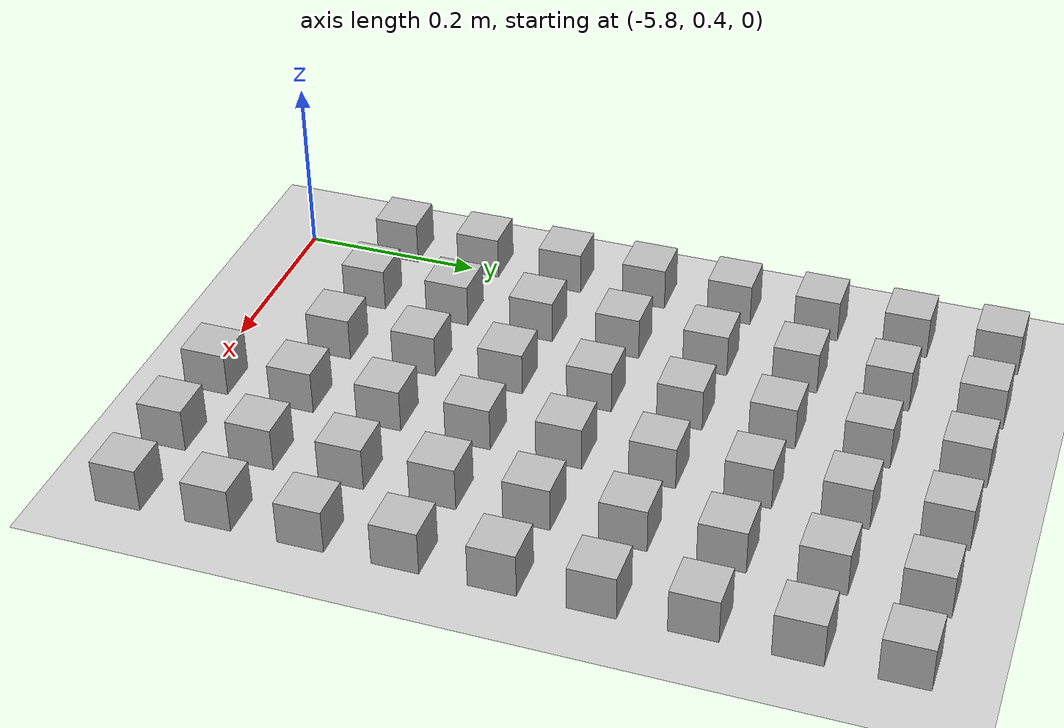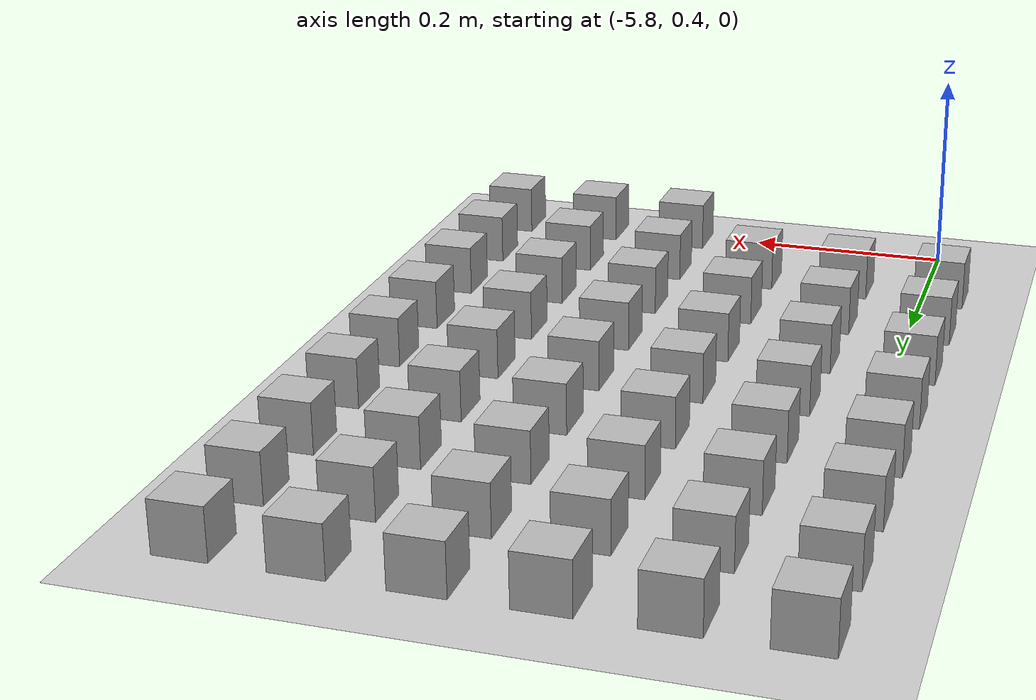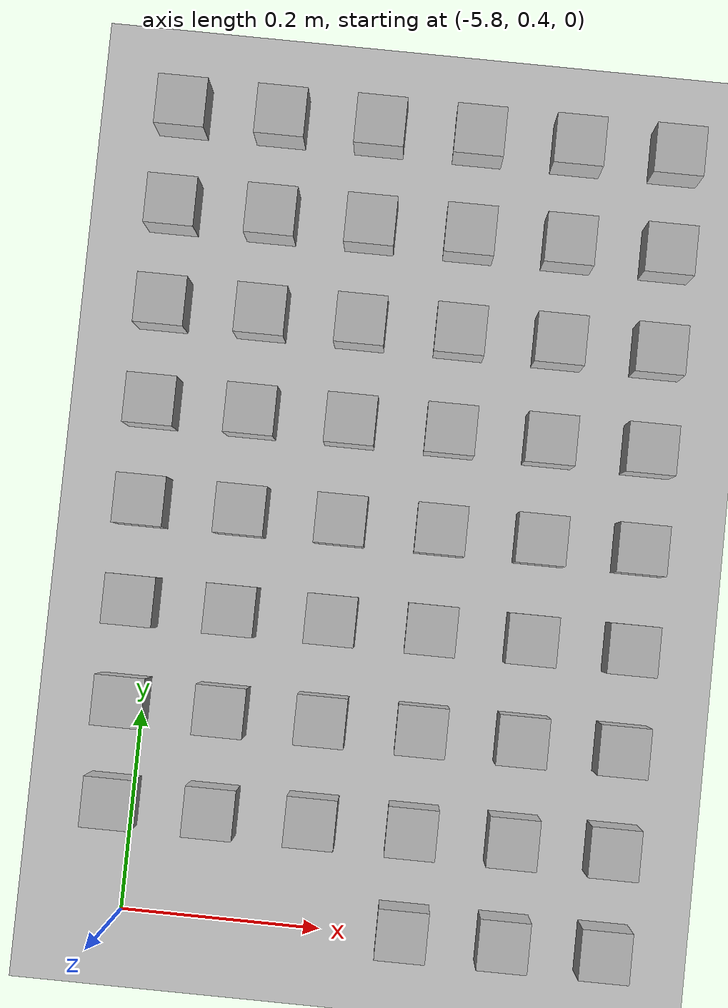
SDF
<sdf version="1.4">
 <world name="default">
  <model name="ground_plane">
   <static>1</static>
   <link name="link">
    <collision name="collision">
     <geometry><plane><normal>0 0 1</normal><size>100 100</size></plane></geometry>
     <surface><friction><ode><mu>100</mu><mu2>50</mu2></ode></friction></surface>
    </collision>
    <visual name="visual">
     <cast_shadows>0</cast_shadows>
     <geometry><plane><normal>0 0 1</normal><size>100 100</size></plane></geometry>
     <material>
      <script><uri>file://media/materials/scripts/gazebo.material</uri><name>Gazebo/Grey</name></script>
     </material>
    </visual>
    <velocity_decay><linear>0</linear><angular>0</angular></velocity_decay>
   </link>
  </model>
  <model name="at115">
   <static>0</static>
   <link name="link">
    <inertial>
     <mass>0.01</mass>
     <inertia><ixx>4e-05</ixx><ixy>0</ixy><ixz>0</ixz><iyy>4e-05</iyy><iyz>0</iyz><izz>4e-05</izz></inertia>
    </inertial>
    <visual name="visual">
     <geometry><box><size>0.05 0.05 0.05</size></box></geometry>
     <material>
      <script>
       <uri>model://at0/materials/scripts</uri>
       <uri>model://at0/materials/textures</uri>
       <name>at0/Diffuse</name>
      </script>
     </material>
    </visual>
    <collision name="collision">
     <geometry><box><size>0.05 0.05 0.05</size></box></geometry>
     <surface><friction><ode><mu>0.8</mu><mu2>0.7</mu2></ode></friction></surface>
    </collision>
    <velocity_decay><linear>0</linear><angular>0</angular></velocity_decay>
   </link>
   <pose>-5.51833 0.409652 0.025 0 -0 0</pose>
  </model>
  <model name="at116">
   <static>0</static>
   <link name="link">
    <inertial>
     <mass>0.01</mass>
     <inertia><ixx>4e-05</ixx><ixy>0</ixy><ixz>0</ixz><iyy>4e-05</iyy><iyz>0</iyz><izz>4e-05</izz></inertia>
    </inertial>
    <visual name="visual">
     <geometry><box><size>0.05 0.05 0.05</size></box></geometry>
     <material>
      <script>
       <uri>model://at0/materials/scripts</uri>
       <uri>model://at0/materials/textures</uri>
       <name>at0/Diffuse</name>
      </script>
     </material>
    </visual>
    <collision name="collision">
     <geometry><box><size>0.05 0.05 0.05</size></box></geometry>
     <surface><friction><ode><mu>0.8</mu><mu2>0.7</mu2></ode></friction></surface>
    </collision>
    <velocity_decay><linear>0</linear><angular>0</angular></velocity_decay>
   </link>
   <pose>-5.41833 0.409652 0.025 0 -0 0</pose>
  </model>
  <model name="at117">
   <static>0</static>
   <link name="link">
    <inertial>
     <mass>0.01</mass>
     <inertia><ixx>4e-05</ixx><ixy>0</ixy><ixz>0</ixz><iyy>4e-05</iyy><iyz>0</iyz><izz>4e-05</izz></inertia>
    </inertial>
    <visual name="visual">
     <geometry><box><size>0.05 0.05 0.05</size></box></geometry>
     <material>
      <script>
       <uri>model://at0/materials/scripts</uri>
       <uri>model://at0/materials/textures</uri>
       <name>at0/Diffuse</name>
      </script>
     </material>
    </visual>
    <collision name="collision">
     <geometry><box><size>0.05 0.05 0.05</size></box></geometry>
     <surface><friction><ode><mu>0.8</mu><mu2>0.7</mu2></ode></friction></surface>
    </collision>
    <velocity_decay><linear>0</linear><angular>0</angular></velocity_decay>
   </link>
   <pose>-5.31833 0.409652 0.025 0 -0 0</pose>
  </model>
  <model name="at128">
   <static>0</static>
   <link name="link">
    <inertial>
     <mass>0.01</mass>
     <inertia><ixx>4e-05</ixx><ixy>0</ixy><ixz>0</ixz><iyy>4e-05</iyy><iyz>0</iyz><izz>4e-05</izz></inertia>
    </inertial>
    <visual name="visual">
     <geometry><box><size>0.05 0.05 0.05</size></box></geometry>
     <material>
      <script>
       <uri>model://at0/materials/scripts</uri>
       <uri>model://at0/materials/textures</uri>
       <name>at0/Diffuse</name>
      </script>
     </material>
    </visual>
    <collision name="collision">
     <geometry><box><size>0.05 0.05 0.05</size></box></geometry>
     <surface><friction><ode><mu>0.8</mu><mu2>0.7</mu2></ode></friction></surface>
    </collision>
    <velocity_decay><linear>0</linear><angular>0</angular></velocity_decay>
   </link>
   <pose>-5.81833 0.509652 0.025 0 -0 0</pose>
  </model>
  <model name="at129">
   <static>0</static>
   <link name="link">
    <inertial>
     <mass>0.01</mass>
     <inertia><ixx>4e-05</ixx><ixy>0</ixy><ixz>0</ixz><iyy>4e-05</iyy><iyz>0</iyz><izz>4e-05</izz></inertia>
    </inertial>
    <visual name="visual">
     <geometry><box><size>0.05 0.05 0.05</size></box></geometry>
     <material>
      <script>
       <uri>model://at0/materials/scripts</uri>
       <uri>model://at0/materials/textures</uri>
       <name>at0/Diffuse</name>
      </script>
     </material>
    </visual>
    <collision name="collision">
     <geometry><box><size>0.05 0.05 0.05</size></box></geometry>
     <surface><friction><ode><mu>0.8</mu><mu2>0.7</mu2></ode></friction></surface>
    </collision>
    <velocity_decay><linear>0</linear><angular>0</angular></velocity_decay>
   </link>
   <pose>-5.71833 0.509652 0.025 0 -0 0</pose>
  </model>
  <model name="at130">
   <static>0</static>
   <link name="link">
    <inertial>
     <mass>0.01</mass>
     <inertia><ixx>4e-05</ixx><ixy>0</ixy><ixz>0</ixz><iyy>4e-05</iyy><iyz>0</iyz><izz>4e-05</izz></inertia>
    </inertial>
    <visual name="visual">
     <geometry><box><size>0.05 0.05 0.05</size></box></geometry>
     <material>
      <script>
       <uri>model://at0/materials/scripts</uri>
       <uri>model://at0/materials/textures</uri>
       <name>at0/Diffuse</name>
      </script>
     </material>
    </visual>
    <collision name="collision">
     <geometry><box><size>0.05 0.05 0.05</size></box></geometry>
     <surface><friction><ode><mu>0.8</mu><mu2>0.7</mu2></ode></friction></surface>
    </collision>
    <velocity_decay><linear>0</linear><angular>0</angular></velocity_decay>
   </link>
   <pose>-5.61833 0.509652 0.025 0 -0 0</pose>
  </model>
  <model name="at131">
   <static>0</static>
   <link name="link">
    <inertial>
     <mass>0.01</mass>
     <inertia><ixx>4e-05</ixx><ixy>0</ixy><ixz>0</ixz><iyy>4e-05</iyy><iyz>0</iyz><izz>4e-05</izz></inertia>
    </inertial>
    <visual name="visual">
     <geometry><box><size>0.05 0.05 0.05</size></box></geometry>
     <material>
      <script>
       <uri>model://at0/materials/scripts</uri>
       <uri>model://at0/materials/textures</uri>
       <name>at0/Diffuse</name>
      </script>
     </material>
    </visual>
    <collision name="collision">
     <geometry><box><size>0.05 0.05 0.05</size></box></geometry>
     <surface><friction><ode><mu>0.8</mu><mu2>0.7</mu2></ode></friction></surface>
    </collision>
    <velocity_decay><linear>0</linear><angular>0</angular></velocity_decay>
   </link>
   <pose>-5.51833 0.509652 0.025 0 -0 0</pose>
  </model>
  <model name="at132">
   <static>0</static>
   <link name="link">
    <inertial>
     <mass>0.01</mass>
     <inertia><ixx>4e-05</ixx><ixy>0</ixy><ixz>0</ixz><iyy>4e-05</iyy><iyz>0</iyz><izz>4e-05</izz></inertia>
    </inertial>
    <visual name="visual">
     <geometry><box><size>0.05 0.05 0.05</size></box></geometry>
     <material>
      <script>
       <uri>model://at0/materials/scripts</uri>
       <uri>model://at0/materials/textures</uri>
       <name>at0/Diffuse</name>
      </script>
     </material>
    </visual>
    <collision name="collision">
     <geometry><box><size>0.05 0.05 0.05</size></box></geometry>
     <surface><friction><ode><mu>0.8</mu><mu2>0.7</mu2></ode></friction></surface>
    </collision>
    <velocity_decay><linear>0</linear><angular>0</angular></velocity_decay>
   </link>
   <pose>-5.41833 0.509652 0.025 0 -0 0</pose>
  </model>
  <model name="at133">
   <static>0</static>
   <link name="link">
    <inertial>
     <mass>0.01</mass>
     <inertia><ixx>4e-05</ixx><ixy>0</ixy><ixz>0</ixz><iyy>4e-05</iyy><iyz>0</iyz><izz>4e-05</izz></inertia>
    </inertial>
    <visual name="visual">
     <geometry><box><size>0.05 0.05 0.05</size></box></geometry>
     <material>
      <script>
       <uri>model://at0/materials/scripts</uri>
       <uri>model://at0/materials/textures</uri>
       <name>at0/Diffuse</name>
      </script>
     </material>
    </visual>
    <collision name="collision">
     <geometry><box><size>0.05 0.05 0.05</size></box></geometry>
     <surface><friction><ode><mu>0.8</mu><mu2>0.7</mu2></ode></friction></surface>
    </collision>
    <velocity_decay><linear>0</linear><angular>0</angular></velocity_decay>
   </link>
   <pose>-5.31833 0.509652 0.025 0 -0 0</pose>
  </model>
  <model name="at144">
   <static>0</static>
   <link name="link">
    <inertial>
     <mass>0.01</mass>
     <inertia><ixx>4e-05</ixx><ixy>0</ixy><ixz>0</ixz><iyy>4e-05</iyy><iyz>0</iyz><izz>4e-05</izz></inertia>
    </inertial>
    <visual name="visual">
     <geometry><box><size>0.05 0.05 0.05</size></box></geometry>
     <material>
      <script>
       <uri>model://at0/materials/scripts</uri>
       <uri>model://at0/materials/textures</uri>
       <name>at0/Diffuse</name>
      </script>
     </material>
    </visual>
    <collision name="collision">
     <geometry><box><size>0.05 0.05 0.05</size></box></geometry>
     <surface><friction><ode><mu>0.8</mu><mu2>0.7</mu2></ode></friction></surface>
    </collision>
    <velocity_decay><linear>0</linear><angular>0</angular></velocity_decay>
   </link>
   <pose>-5.81833 0.609652 0.025 0 -0 0</pose>
  </model>
  <model name="at145">
   <static>0</static>
   <link name="link">
    <inertial>
     <mass>0.01</mass>
     <inertia><ixx>4e-05</ixx><ixy>0</ixy><ixz>0</ixz><iyy>4e-05</iyy><iyz>0</iyz><izz>4e-05</izz></inertia>
    </inertial>
    <visual name="visual">
     <geometry><box><size>0.05 0.05 0.05</size></box></geometry>
     <material>
      <script>
       <uri>model://at0/materials/scripts</uri>
       <uri>model://at0/materials/textures</uri>
       <name>at0/Diffuse</name>
      </script>
     </material>
    </visual>
    <collision name="collision">
     <geometry><box><size>0.05 0.05 0.05</size></box></geometry>
     <surface><friction><ode><mu>0.8</mu><mu2>0.7</mu2></ode></friction></surface>
    </collision>
    <velocity_decay><linear>0</linear><angular>0</angular></velocity_decay>
   </link>
   <pose>-5.71833 0.609652 0.025 0 -0 0</pose>
  </model>
  <model name="at146">
   <static>0</static>
   <link name="link">
    <inertial>
     <mass>0.01</mass>
     <inertia><ixx>4e-05</ixx><ixy>0</ixy><ixz>0</ixz><iyy>4e-05</iyy><iyz>0</iyz><izz>4e-05</izz></inertia>
    </inertial>
    <visual name="visual">
     <geometry><box><size>0.05 0.05 0.05</size></box></geometry>
     <material>
      <script>
       <uri>model://at0/materials/scripts</uri>
       <uri>model://at0/materials/textures</uri>
       <name>at0/Diffuse</name>
      </script>
     </material>
    </visual>
    <collision name="collision">
     <geometry><box><size>0.05 0.05 0.05</size></box></geometry>
     <surface><friction><ode><mu>0.8</mu><mu2>0.7</mu2></ode></friction></surface>
    </collision>
    <velocity_decay><linear>0</linear><angular>0</angular></velocity_decay>
   </link>
   <pose>-5.61833 0.609652 0.025 0 -0 0</pose>
  </model>
  <model name="at147">
   <static>0</static>
   <link name="link">
    <inertial>
     <mass>0.01</mass>
     <inertia><ixx>4e-05</ixx><ixy>0</ixy><ixz>0</ixz><iyy>4e-05</iyy><iyz>0</iyz><izz>4e-05</izz></inertia>
    </inertial>
    <visual name="visual">
     <geometry><box><size>0.05 0.05 0.05</size></box></geometry>
     <material>
      <script>
       <uri>model://at0/materials/scripts</uri>
       <uri>model://at0/materials/textures</uri>
       <name>at0/Diffuse</name>
      </script>
     </material>
    </visual>
    <collision name="collision">
     <geometry><box><size>0.05 0.05 0.05</size></box></geometry>
     <surface><friction><ode><mu>0.8</mu><mu2>0.7</mu2></ode></friction></surface>
    </collision>
    <velocity_decay><linear>0</linear><angular>0</angular></velocity_decay>
   </link>
   <pose>-5.51833 0.609652 0.025 0 -0 0</pose>
  </model>
  <model name="at148">
   <static>0</static>
   <link name="link">
    <inertial>
     <mass>0.01</mass>
     <inertia><ixx>4e-05</ixx><ixy>0</ixy><ixz>0</ixz><iyy>4e-05</iyy><iyz>0</iyz><izz>4e-05</izz></inertia>
    </inertial>
    <visual name="visual">
     <geometry><box><size>0.05 0.05 0.05</size></box></geometry>
     <material>
      <script>
       <uri>model://at0/materials/scripts</uri>
       <uri>model://at0/materials/textures</uri>
       <name>at0/Diffuse</name>
      </script>
     </material>
    </visual>
    <collision name="collision">
     <geometry><box><size>0.05 0.05 0.05</size></box></geometry>
     <surface><friction><ode><mu>0.8</mu><mu2>0.7</mu2></ode></friction></surface>
    </collision>
    <velocity_decay><linear>0</linear><angular>0</angular></velocity_decay>
   </link>
   <pose>-5.41833 0.609652 0.025 0 -0 0</pose>
  </model>
  <model name="at149">
   <static>0</static>
   <link name="link">
    <inertial>
     <mass>0.01</mass>
     <inertia><ixx>4e-05</ixx><ixy>0</ixy><ixz>0</ixz><iyy>4e-05</iyy><iyz>0</iyz><izz>4e-05</izz></inertia>
    </inertial>
    <visual name="visual">
     <geometry><box><size>0.05 0.05 0.05</size></box></geometry>
     <material>
      <script>
       <uri>model://at0/materials/scripts</uri>
       <uri>model://at0/materials/textures</uri>
       <name>at0/Diffuse</name>
      </script>
     </material>
    </visual>
    <collision name="collision">
     <geometry><box><size>0.05 0.05 0.05</size></box></geometry>
     <surface><friction><ode><mu>0.8</mu><mu2>0.7</mu2></ode></friction></surface>
    </collision>
    <velocity_decay><linear>0</linear><angular>0</angular></velocity_decay>
   </link>
   <pose>-5.31833 0.609652 0.025 0 -0 0</pose>
  </model>
  <model name="at160">
   <static>0</static>
   <link name="link">
    <inertial>
     <mass>0.01</mass>
     <inertia><ixx>4e-05</ixx><ixy>0</ixy><ixz>0</ixz><iyy>4e-05</iyy><iyz>0</iyz><izz>4e-05</izz></inertia>
    </inertial>
    <visual name="visual">
     <geometry><box><size>0.05 0.05 0.05</size></box></geometry>
     <material>
      <script>
       <uri>model://at0/materials/scripts</uri>
       <uri>model://at0/materials/textures</uri>
       <name>at0/Diffuse</name>
      </script>
     </material>
    </visual>
    <collision name="collision">
     <geometry><box><size>0.05 0.05 0.05</size></box></geometry>
     <surface><friction><ode><mu>0.8</mu><mu2>0.7</mu2></ode></friction></surface>
    </collision>
    <velocity_decay><linear>0</linear><angular>0</angular></velocity_decay>
   </link>
   <pose>-5.81833 0.709652 0.025 0 -0 0</pose>
  </model>
  <model name="at161">
   <static>0</static>
   <link name="link">
    <inertial>
     <mass>0.01</mass>
     <inertia><ixx>4e-05</ixx><ixy>0</ixy><ixz>0</ixz><iyy>4e-05</iyy><iyz>0</iyz><izz>4e-05</izz></inertia>
    </inertial>
    <visual name="visual">
     <geometry><box><size>0.05 0.05 0.05</size></box></geometry>
     <material>
      <script>
       <uri>model://at0/materials/scripts</uri>
       <uri>model://at0/materials/textures</uri>
       <name>at0/Diffuse</name>
      </script>
     </material>
    </visual>
    <collision name="collision">
     <geometry><box><size>0.05 0.05 0.05</size></box></geometry>
     <surface><friction><ode><mu>0.8</mu><mu2>0.7</mu2></ode></friction></surface>
    </collision>
    <velocity_decay><linear>0</linear><angular>0</angular></velocity_decay>
   </link>
   <pose>-5.71833 0.709652 0.025 0 -0 0</pose>
  </model>
  <model name="at162">
   <static>0</static>
   <link name="link">
    <inertial>
     <mass>0.01</mass>
     <inertia><ixx>4e-05</ixx><ixy>0</ixy><ixz>0</ixz><iyy>4e-05</iyy><iyz>0</iyz><izz>4e-05</izz></inertia>
    </inertial>
    <visual name="visual">
     <geometry><box><size>0.05 0.05 0.05</size></box></geometry>
     <material>
      <script>
       <uri>model://at0/materials/scripts</uri>
       <uri>model://at0/materials/textures</uri>
       <name>at0/Diffuse</name>
      </script>
     </material>
    </visual>
    <collision name="collision">
     <geometry><box><size>0.05 0.05 0.05</size></box></geometry>
     <surface><friction><ode><mu>0.8</mu><mu2>0.7</mu2></ode></friction></surface>
    </collision>
    <velocity_decay><linear>0</linear><angular>0</angular></velocity_decay>
   </link>
   <pose>-5.61833 0.709652 0.025 0 -0 0</pose>
  </model>
  <model name="at163">
   <static>0</static>
   <link name="link">
    <inertial>
     <mass>0.01</mass>
     <inertia><ixx>4e-05</ixx><ixy>0</ixy><ixz>0</ixz><iyy>4e-05</iyy><iyz>0</iyz><izz>4e-05</izz></inertia>
    </inertial>
    <visual name="visual">
     <geometry><box><size>0.05 0.05 0.05</size></box></geometry>
     <material>
      <script>
       <uri>model://at0/materials/scripts</uri>
       <uri>model://at0/materials/textures</uri>
       <name>at0/Diffuse</name>
      </script>
     </material>
    </visual>
    <collision name="collision">
     <geometry><box><size>0.05 0.05 0.05</size></box></geometry>
     <surface><friction><ode><mu>0.8</mu><mu2>0.7</mu2></ode></friction></surface>
    </collision>
    <velocity_decay><linear>0</linear><angular>0</angular></velocity_decay>
   </link>
   <pose>-5.51833 0.709652 0.025 0 -0 0</pose>
  </model>
  <model name="at164">
   <static>0</static>
   <link name="link">
    <inertial>
     <mass>0.01</mass>
     <inertia><ixx>4e-05</ixx><ixy>0</ixy><ixz>0</ixz><iyy>4e-05</iyy><iyz>0</iyz><izz>4e-05</izz></inertia>
    </inertial>
    <visual name="visual">
     <geometry><box><size>0.05 0.05 0.05</size></box></geometry>
     <material>
      <script>
       <uri>model://at0/materials/scripts</uri>
       <uri>model://at0/materials/textures</uri>
       <name>at0/Diffuse</name>
      </script>
     </material>
    </visual>
    <collision name="collision">
     <geometry><box><size>0.05 0.05 0.05</size></box></geometry>
     <surface><friction><ode><mu>0.8</mu><mu2>0.7</mu2></ode></friction></surface>
    </collision>
    <velocity_decay><linear>0</linear><angular>0</angular></velocity_decay>
   </link>
   <pose>-5.41833 0.709652 0.025 0 -0 0</pose>
  </model>
  <model name="at165">
   <static>0</static>
   <link name="link">
    <inertial>
     <mass>0.01</mass>
     <inertia><ixx>4e-05</ixx><ixy>0</ixy><ixz>0</ixz><iyy>4e-05</iyy><iyz>0</iyz><izz>4e-05</izz></inertia>
    </inertial>
    <visual name="visual">
     <geometry><box><size>0.05 0.05 0.05</size></box></geometry>
     <material>
      <script>
       <uri>model://at0/materials/scripts</uri>
       <uri>model://at0/materials/textures</uri>
       <name>at0/Diffuse</name>
      </script>
     </material>
    </visual>
    <collision name="collision">
     <geometry><box><size>0.05 0.05 0.05</size></box></geometry>
     <surface><friction><ode><mu>0.8</mu><mu2>0.7</mu2></ode></friction></surface>
    </collision>
    <velocity_decay><linear>0</linear><angular>0</angular></velocity_decay>
   </link>
   <pose>-5.31833 0.709652 0.025 0 -0 0</pose>
  </model>
  <model name="at176">
   <static>0</static>
   <link name="link">
    <inertial>
     <mass>0.01</mass>
     <inertia><ixx>4e-05</ixx><ixy>0</ixy><ixz>0</ixz><iyy>4e-05</iyy><iyz>0</iyz><izz>4e-05</izz></inertia>
    </inertial>
    <visual name="visual">
     <geometry><box><size>0.05 0.05 0.05</size></box></geometry>
     <material>
      <script>
       <uri>model://at0/materials/scripts</uri>
       <uri>model://at0/materials/textures</uri>
       <name>at0/Diffuse</name>
      </script>
     </material>
    </visual>
    <collision name="collision">
     <geometry><box><size>0.05 0.05 0.05</size></box></geometry>
     <surface><friction><ode><mu>0.8</mu><mu2>0.7</mu2></ode></friction></surface>
    </collision>
    <velocity_decay><linear>0</linear><angular>0</angular></velocity_decay>
   </link>
   <pose>-5.81833 0.809652 0.025 0 -0 0</pose>
  </model>
  <model name="at177">
   <static>0</static>
   <link name="link">
    <inertial>
     <mass>0.01</mass>
     <inertia><ixx>4e-05</ixx><ixy>0</ixy><ixz>0</ixz><iyy>4e-05</iyy><iyz>0</iyz><izz>4e-05</izz></inertia>
    </inertial>
    <visual name="visual">
     <geometry><box><size>0.05 0.05 0.05</size></box></geometry>
     <material>
      <script>
       <uri>model://at0/materials/scripts</uri>
       <uri>model://at0/materials/textures</uri>
       <name>at0/Diffuse</name>
      </script>
     </material>
    </visual>
    <collision name="collision">
     <geometry><box><size>0.05 0.05 0.05</size></box></geometry>
     <surface><friction><ode><mu>0.8</mu><mu2>0.7</mu2></ode></friction></surface>
    </collision>
    <velocity_decay><linear>0</linear><angular>0</angular></velocity_decay>
   </link>
   <pose>-5.71833 0.809652 0.025 0 -0 0</pose>
  </model>
  <model name="at178">
   <static>0</static>
   <link name="link">
    <inertial>
     <mass>0.01</mass>
     <inertia><ixx>4e-05</ixx><ixy>0</ixy><ixz>0</ixz><iyy>4e-05</iyy><iyz>0</iyz><izz>4e-05</izz></inertia>
    </inertial>
    <visual name="visual">
     <geometry><box><size>0.05 0.05 0.05</size></box></geometry>
     <material>
      <script>
       <uri>model://at0/materials/scripts</uri>
       <uri>model://at0/materials/textures</uri>
       <name>at0/Diffuse</name>
      </script>
     </material>
    </visual>
    <collision name="collision">
     <geometry><box><size>0.05 0.05 0.05</size></box></geometry>
     <surface><friction><ode><mu>0.8</mu><mu2>0.7</mu2></ode></friction></surface>
    </collision>
    <velocity_decay><linear>0</linear><angular>0</angular></velocity_decay>
   </link>
   <pose>-5.61833 0.809652 0.025 0 -0 0</pose>
  </model>
  <model name="at179">
   <static>0</static>
   <link name="link">
    <inertial>
     <mass>0.01</mass>
     <inertia><ixx>4e-05</ixx><ixy>0</ixy><ixz>0</ixz><iyy>4e-05</iyy><iyz>0</iyz><izz>4e-05</izz></inertia>
    </inertial>
    <visual name="visual">
     <geometry><box><size>0.05 0.05 0.05</size></box></geometry>
     <material>
      <script>
       <uri>model://at0/materials/scripts</uri>
       <uri>model://at0/materials/textures</uri>
       <name>at0/Diffuse</name>
      </script>
     </material>
    </visual>
    <collision name="collision">
     <geometry><box><size>0.05 0.05 0.05</size></box></geometry>
     <surface><friction><ode><mu>0.8</mu><mu2>0.7</mu2></ode></friction></surface>
    </collision>
    <velocity_decay><linear>0</linear><angular>0</angular></velocity_decay>
   </link>
   <pose>-5.51833 0.809652 0.025 0 -0 0</pose>
  </model>
  <model name="at180">
   <static>0</static>
   <link name="link">
    <inertial>
     <mass>0.01</mass>
     <inertia><ixx>4e-05</ixx><ixy>0</ixy><ixz>0</ixz><iyy>4e-05</iyy><iyz>0</iyz><izz>4e-05</izz></inertia>
    </inertial>
    <visual name="visual">
     <geometry><box><size>0.05 0.05 0.05</size></box></geometry>
     <material>
      <script>
       <uri>model://at0/materials/scripts</uri>
       <uri>model://at0/materials/textures</uri>
       <name>at0/Diffuse</name>
      </script>
     </material>
    </visual>
    <collision name="collision">
     <geometry><box><size>0.05 0.05 0.05</size></box></geometry>
     <surface><friction><ode><mu>0.8</mu><mu2>0.7</mu2></ode></friction></surface>
    </collision>
    <velocity_decay><linear>0</linear><angular>0</angular></velocity_decay>
   </link>
   <pose>-5.41833 0.809652 0.025 0 -0 0</pose>
  </model>
  <model name="at181">
   <static>0</static>
   <link name="link">
    <inertial>
     <mass>0.01</mass>
     <inertia><ixx>4e-05</ixx><ixy>0</ixy><ixz>0</ixz><iyy>4e-05</iyy><iyz>0</iyz><izz>4e-05</izz></inertia>
    </inertial>
    <visual name="visual">
     <geometry><box><size>0.05 0.05 0.05</size></box></geometry>
     <material>
      <script>
       <uri>model://at0/materials/scripts</uri>
       <uri>model://at0/materials/textures</uri>
       <name>at0/Diffuse</name>
      </script>
     </material>
    </visual>
    <collision name="collision">
     <geometry><box><size>0.05 0.05 0.05</size></box></geometry>
     <surface><friction><ode><mu>0.8</mu><mu2>0.7</mu2></ode></friction></surface>
    </collision>
    <velocity_decay><linear>0</linear><angular>0</angular></velocity_decay>
   </link>
   <pose>-5.31833 0.809652 0.025 0 -0 0</pose>
  </model>
  <model name="at192">
   <static>0</static>
   <link name="link">
    <inertial>
     <mass>0.01</mass>
     <inertia><ixx>4e-05</ixx><ixy>0</ixy><ixz>0</ixz><iyy>4e-05</iyy><iyz>0</iyz><izz>4e-05</izz></inertia>
    </inertial>
    <visual name="visual">
     <geometry><box><size>0.05 0.05 0.05</size></box></geometry>
     <material>
      <script>
       <uri>model://at0/materials/scripts</uri>
       <uri>model://at0/materials/textures</uri>
       <name>at0/Diffuse</name>
      </script>
     </material>
    </visual>
    <collision name="collision">
     <geometry><box><size>0.05 0.05 0.05</size></box></geometry>
     <surface><friction><ode><mu>0.8</mu><mu2>0.7</mu2></ode></friction></surface>
    </collision>
    <velocity_decay><linear>0</linear><angular>0</angular></velocity_decay>
   </link>
   <pose>-5.81833 0.909652 0.025 0 -0 0</pose>
  </model>
  <model name="at193">
   <static>0</static>
   <link name="link">
    <inertial>
     <mass>0.01</mass>
     <inertia><ixx>4e-05</ixx><ixy>0</ixy><ixz>0</ixz><iyy>4e-05</iyy><iyz>0</iyz><izz>4e-05</izz></inertia>
    </inertial>
    <visual name="visual">
     <geometry><box><size>0.05 0.05 0.05</size></box></geometry>
     <material>
      <script>
       <uri>model://at0/materials/scripts</uri>
       <uri>model://at0/materials/textures</uri>
       <name>at0/Diffuse</name>
      </script>
     </material>
    </visual>
    <collision name="collision">
     <geometry><box><size>0.05 0.05 0.05</size></box></geometry>
     <surface><friction><ode><mu>0.8</mu><mu2>0.7</mu2></ode></friction></surface>
    </collision>
    <velocity_decay><linear>0</linear><angular>0</angular></velocity_decay>
   </link>
   <pose>-5.71833 0.909652 0.025 0 -0 0</pose>
  </model>
  <model name="at194">
   <static>0</static>
   <link name="link">
    <inertial>
     <mass>0.01</mass>
     <inertia><ixx>4e-05</ixx><ixy>0</ixy><ixz>0</ixz><iyy>4e-05</iyy><iyz>0</iyz><izz>4e-05</izz></inertia>
    </inertial>
    <visual name="visual">
     <geometry><box><size>0.05 0.05 0.05</size></box></geometry>
     <material>
      <script>
       <uri>model://at0/materials/scripts</uri>
       <uri>model://at0/materials/textures</uri>
       <name>at0/Diffuse</name>
      </script>
     </material>
    </visual>
    <collision name="collision">
     <geometry><box><size>0.05 0.05 0.05</size></box></geometry>
     <surface><friction><ode><mu>0.8</mu><mu2>0.7</mu2></ode></friction></surface>
    </collision>
    <velocity_decay><linear>0</linear><angular>0</angular></velocity_decay>
   </link>
   <pose>-5.61833 0.909652 0.025 0 -0 0</pose>
  </model>
  <model name="at195">
   <static>0</static>
   <link name="link">
    <inertial>
     <mass>0.01</mass>
     <inertia><ixx>4e-05</ixx><ixy>0</ixy><ixz>0</ixz><iyy>4e-05</iyy><iyz>0</iyz><izz>4e-05</izz></inertia>
    </inertial>
    <visual name="visual">
     <geometry><box><size>0.05 0.05 0.05</size></box></geometry>
     <material>
      <script>
       <uri>model://at0/materials/scripts</uri>
       <uri>model://at0/materials/textures</uri>
       <name>at0/Diffuse</name>
      </script>
     </material>
    </visual>
    <collision name="collision">
     <geometry><box><size>0.05 0.05 0.05</size></box></geometry>
     <surface><friction><ode><mu>0.8</mu><mu2>0.7</mu2></ode></friction></surface>
    </collision>
    <velocity_decay><linear>0</linear><angular>0</angular></velocity_decay>
   </link>
   <pose>-5.51833 0.909652 0.025 0 -0 0</pose>
  </model>
  <model name="at196">
   <static>0</static>
   <link name="link">
    <inertial>
     <mass>0.01</mass>
     <inertia><ixx>4e-05</ixx><ixy>0</ixy><ixz>0</ixz><iyy>4e-05</iyy><iyz>0</iyz><izz>4e-05</izz></inertia>
    </inertial>
    <visual name="visual">
     <geometry><box><size>0.05 0.05 0.05</size></box></geometry>
     <material>
      <script>
       <uri>model://at0/materials/scripts</uri>
       <uri>model://at0/materials/textures</uri>
       <name>at0/Diffuse</name>
      </script>
     </material>
    </visual>
    <collision name="collision">
     <geometry><box><size>0.05 0.05 0.05</size></box></geometry>
     <surface><friction><ode><mu>0.8</mu><mu2>0.7</mu2></ode></friction></surface>
    </collision>
    <velocity_decay><linear>0</linear><angular>0</angular></velocity_decay>
   </link>
   <pose>-5.41833 0.909652 0.025 0 -0 0</pose>
  </model>
  <model name="at197">
   <static>0</static>
   <link name="link">
    <inertial>
     <mass>0.01</mass>
     <inertia><ixx>4e-05</ixx><ixy>0</ixy><ixz>0</ixz><iyy>4e-05</iyy><iyz>0</iyz><izz>4e-05</izz></inertia>
    </inertial>
    <visual name="visual">
     <geometry><box><size>0.05 0.05 0.05</size></box></geometry>
     <material>
      <script>
       <uri>model://at0/materials/scripts</uri>
       <uri>model://at0/materials/textures</uri>
       <name>at0/Diffuse</name>
      </script>
     </material>
    </visual>
    <collision name="collision">
     <geometry><box><size>0.05 0.05 0.05</size></box></geometry>
     <surface><friction><ode><mu>0.8</mu><mu2>0.7</mu2></ode></friction></surface>
    </collision>
    <velocity_decay><linear>0</linear><angular>0</angular></velocity_decay>
   </link>
   <pose>-5.31833 0.909652 0.025 0 -0 0</pose>
  </model>
  <model name="at208">
   <static>0</static>
   <link name="link">
    <inertial>
     <mass>0.01</mass>
     <inertia><ixx>4e-05</ixx><ixy>0</ixy><ixz>0</ixz><iyy>4e-05</iyy><iyz>0</iyz><izz>4e-05</izz></inertia>
    </inertial>
    <visual name="visual">
     <geometry><box><size>0.05 0.05 0.05</size></box></geometry>
     <material>
      <script>
       <uri>model://at0/materials/scripts</uri>
       <uri>model://at0/materials/textures</uri>
       <name>at0/Diffuse</name>
      </script>
     </material>
    </visual>
    <collision name="collision">
     <geometry><box><size>0.05 0.05 0.05</size></box></geometry>
     <surface><friction><ode><mu>0.8</mu><mu2>0.7</mu2></ode></friction></surface>
    </collision>
    <velocity_decay><linear>0</linear><angular>0</angular></velocity_decay>
   </link>
   <pose>-5.81833 1.00965 0.025 0 -0 0</pose>
  </model>
  <model name="at209">
   <static>0</static>
   <link name="link">
    <inertial>
     <mass>0.01</mass>
     <inertia><ixx>4e-05</ixx><ixy>0</ixy><ixz>0</ixz><iyy>4e-05</iyy><iyz>0</iyz><izz>4e-05</izz></inertia>
    </inertial>
    <visual name="visual">
     <geometry><box><size>0.05 0.05 0.05</size></box></geometry>
     <material>
      <script>
       <uri>model://at0/materials/scripts</uri>
       <uri>model://at0/materials/textures</uri>
       <name>at0/Diffuse</name>
      </script>
     </material>
    </visual>
    <collision name="collision">
     <geometry><box><size>0.05 0.05 0.05</size></box></geometry>
     <surface><friction><ode><mu>0.8</mu><mu2>0.7</mu2></ode></friction></surface>
    </collision>
    <velocity_decay><linear>0</linear><angular>0</angular></velocity_decay>
   </link>
   <pose>-5.71833 1.00965 0.025 0 -0 0</pose>
  </model>
  <model name="at210">
   <static>0</static>
   <link name="link">
    <inertial>
     <mass>0.01</mass>
     <inertia><ixx>4e-05</ixx><ixy>0</ixy><ixz>0</ixz><iyy>4e-05</iyy><iyz>0</iyz><izz>4e-05</izz></inertia>
    </inertial>
    <visual name="visual">
     <geometry><box><size>0.05 0.05 0.05</size></box></geometry>
     <material>
      <script>
       <uri>model://at0/materials/scripts</uri>
       <uri>model://at0/materials/textures</uri>
       <name>at0/Diffuse</name>
      </script>
     </material>
    </visual>
    <collision name="collision">
     <geometry><box><size>0.05 0.05 0.05</size></box></geometry>
     <surface><friction><ode><mu>0.8</mu><mu2>0.7</mu2></ode></friction></surface>
    </collision>
    <velocity_decay><linear>0</linear><angular>0</angular></velocity_decay>
   </link>
   <pose>-5.61833 1.00965 0.025 0 -0 0</pose>
  </model>
  <model name="at211">
   <static>0</static>
   <link name="link">
    <inertial>
     <mass>0.01</mass>
     <inertia><ixx>4e-05</ixx><ixy>0</ixy><ixz>0</ixz><iyy>4e-05</iyy><iyz>0</iyz><izz>4e-05</izz></inertia>
    </inertial>
    <visual name="visual">
     <geometry><box><size>0.05 0.05 0.05</size></box></geometry>
     <material>
      <script>
       <uri>model://at0/materials/scripts</uri>
       <uri>model://at0/materials/textures</uri>
       <name>at0/Diffuse</name>
      </script>
     </material>
    </visual>
    <collision name="collision">
     <geometry><box><size>0.05 0.05 0.05</size></box></geometry>
     <surface><friction><ode><mu>0.8</mu><mu2>0.7</mu2></ode></friction></surface>
    </collision>
    <velocity_decay><linear>0</linear><angular>0</angular></velocity_decay>
   </link>
   <pose>-5.51833 1.00965 0.025 0 -0 0</pose>
  </model>
  <model name="at212">
   <static>0</static>
   <link name="link">
    <inertial>
     <mass>0.01</mass>
     <inertia><ixx>4e-05</ixx><ixy>0</ixy><ixz>0</ixz><iyy>4e-05</iyy><iyz>0</iyz><izz>4e-05</izz></inertia>
    </inertial>
    <visual name="visual">
     <geometry><box><size>0.05 0.05 0.05</size></box></geometry>
     <material>
      <script>
       <uri>model://at0/materials/scripts</uri>
       <uri>model://at0/materials/textures</uri>
       <name>at0/Diffuse</name>
      </script>
     </material>
    </visual>
    <collision name="collision">
     <geometry><box><size>0.05 0.05 0.05</size></box></geometry>
     <surface><friction><ode><mu>0.8</mu><mu2>0.7</mu2></ode></friction></surface>
    </collision>
    <velocity_decay><linear>0</linear><angular>0</angular></velocity_decay>
   </link>
   <pose>-5.41833 1.00965 0.025 0 -0 0</pose>
  </model>
  <model name="at213">
   <static>0</static>
   <link name="link">
    <inertial>
     <mass>0.01</mass>
     <inertia><ixx>4e-05</ixx><ixy>0</ixy><ixz>0</ixz><iyy>4e-05</iyy><iyz>0</iyz><izz>4e-05</izz></inertia>
    </inertial>
    <visual name="visual">
     <geometry><box><size>0.05 0.05 0.05</size></box></geometry>
     <material>
      <script>
       <uri>model://at0/materials/scripts</uri>
       <uri>model://at0/materials/textures</uri>
       <name>at0/Diffuse</name>
      </script>
     </material>
    </visual>
    <collision name="collision">
     <geometry><box><size>0.05 0.05 0.05</size></box></geometry>
     <surface><friction><ode><mu>0.8</mu><mu2>0.7</mu2></ode></friction></surface>
    </collision>
    <velocity_decay><linear>0</linear><angular>0</angular></velocity_decay>
   </link>
   <pose>-5.31833 1.00965 0.025 0 -0 0</pose>
  </model>
  <model name="at224">
   <static>0</static>
   <link name="link">
    <inertial>
     <mass>0.01</mass>
     <inertia><ixx>4e-05</ixx><ixy>0</ixy><ixz>0</ixz><iyy>4e-05</iyy><iyz>0</iyz><izz>4e-05</izz></inertia>
    </inertial>
    <visual name="visual">
     <geometry><box><size>0.05 0.05 0.05</size></box></geometry>
     <material>
      <script>
       <uri>model://at0/materials/scripts</uri>
       <uri>model://at0/materials/textures</uri>
       <name>at0/Diffuse</name>
      </script>
     </material>
    </visual>
    <collision name="collision">
     <geometry><box><size>0.05 0.05 0.05</size></box></geometry>
     <surface><friction><ode><mu>0.8</mu><mu2>0.7</mu2></ode></friction></surface>
    </collision>
    <velocity_decay><linear>0</linear><angular>0</angular></velocity_decay>
   </link>
   <pose>-5.81833 1.10965 0.025 0 -0 0</pose>
  </model>
  <model name="at225">
   <static>0</static>
   <link name="link">
    <inertial>
     <mass>0.01</mass>
     <inertia><ixx>4e-05</ixx><ixy>0</ixy><ixz>0</ixz><iyy>4e-05</iyy><iyz>0</iyz><izz>4e-05</izz></inertia>
    </inertial>
    <visual name="visual">
     <geometry><box><size>0.05 0.05 0.05</size></box></geometry>
     <material>
      <script>
       <uri>model://at0/materials/scripts</uri>
       <uri>model://at0/materials/textures</uri>
       <name>at0/Diffuse</name>
      </script>
     </material>
    </visual>
    <collision name="collision">
     <geometry><box><size>0.05 0.05 0.05</size></box></geometry>
     <surface><friction><ode><mu>0.8</mu><mu2>0.7</mu2></ode></friction></surface>
    </collision>
    <velocity_decay><linear>0</linear><angular>0</angular></velocity_decay>
   </link>
   <pose>-5.71833 1.10965 0.025 0 -0 0</pose>
  </model>
  <model name="at226">
   <static>0</static>
   <link name="link">
    <inertial>
     <mass>0.01</mass>
     <inertia><ixx>4e-05</ixx><ixy>0</ixy><ixz>0</ixz><iyy>4e-05</iyy><iyz>0</iyz><izz>4e-05</izz></inertia>
    </inertial>
    <visual name="visual">
     <geometry><box><size>0.05 0.05 0.05</size></box></geometry>
     <material>
      <script>
       <uri>model://at0/materials/scripts</uri>
       <uri>model://at0/materials/textures</uri>
       <name>at0/Diffuse</name>
      </script>
     </material>
    </visual>
    <collision name="collision">
     <geometry><box><size>0.05 0.05 0.05</size></box></geometry>
     <surface><friction><ode><mu>0.8</mu><mu2>0.7</mu2></ode></friction></surface>
    </collision>
    <velocity_decay><linear>0</linear><angular>0</angular></velocity_decay>
   </link>
   <pose>-5.61833 1.10965 0.025 0 -0 0</pose>
  </model>
  <model name="at227">
   <static>0</static>
   <link name="link">
    <inertial>
     <mass>0.01</mass>
     <inertia><ixx>4e-05</ixx><ixy>0</ixy><ixz>0</ixz><iyy>4e-05</iyy><iyz>0</iyz><izz>4e-05</izz></inertia>
    </inertial>
    <visual name="visual">
     <geometry><box><size>0.05 0.05 0.05</size></box></geometry>
     <material>
      <script>
       <uri>model://at0/materials/scripts</uri>
       <uri>model://at0/materials/textures</uri>
       <name>at0/Diffuse</name>
      </script>
     </material>
    </visual>
    <collision name="collision">
     <geometry><box><size>0.05 0.05 0.05</size></box></geometry>
     <surface><friction><ode><mu>0.8</mu><mu2>0.7</mu2></ode></friction></surface>
    </collision>
    <velocity_decay><linear>0</linear><angular>0</angular></velocity_decay>
   </link>
   <pose>-5.51833 1.10965 0.025 0 -0 0</pose>
  </model>
  <model name="at228">
   <static>0</static>
   <link name="link">
    <inertial>
     <mass>0.01</mass>
     <inertia><ixx>4e-05</ixx><ixy>0</ixy><ixz>0</ixz><iyy>4e-05</iyy><iyz>0</iyz><izz>4e-05</izz></inertia>
    </inertial>
    <visual name="visual">
     <geometry><box><size>0.05 0.05 0.05</size></box></geometry>
     <material>
      <script>
       <uri>model://at0/materials/scripts</uri>
       <uri>model://at0/materials/textures</uri>
       <name>at0/Diffuse</name>
      </script>
     </material>
    </visual>
    <collision name="collision">
     <geometry><box><size>0.05 0.05 0.05</size></box></geometry>
     <surface><friction><ode><mu>0.8</mu><mu2>0.7</mu2></ode></friction></surface>
    </collision>
    <velocity_decay><linear>0</linear><angular>0</angular></velocity_decay>
   </link>
   <pose>-5.41833 1.10965 0.025 0 -0 0</pose>
  </model>
  <model name="at229">
   <static>0</static>
   <link name="link">
    <inertial>
     <mass>0.01</mass>
     <inertia><ixx>4e-05</ixx><ixy>0</ixy><ixz>0</ixz><iyy>4e-05</iyy><iyz>0</iyz><izz>4e-05</izz></inertia>
    </inertial>
    <visual name="visual">
     <geometry><box><size>0.05 0.05 0.05</size></box></geometry>
     <material>
      <script>
       <uri>model://at0/materials/scripts</uri>
       <uri>model://at0/materials/textures</uri>
       <name>at0/Diffuse</name>
      </script>
     </material>
    </visual>
    <collision name="collision">
     <geometry><box><size>0.05 0.05 0.05</size></box></geometry>
     <surface><friction><ode><mu>0.8</mu><mu2>0.7</mu2></ode></friction></surface>
    </collision>
    <velocity_decay><linear>0</linear><angular>0</angular></velocity_decay>
   </link>
   <pose>-5.31833 1.10965 0.025 0 -0 0</pose>
  </model>
  <model name="at240">
   <static>0</static>
   <link name="link">
    <inertial>
     <mass>0.01</mass>
     <inertia><ixx>4e-05</ixx><ixy>0</ixy><ixz>0</ixz><iyy>4e-05</iyy><iyz>0</iyz><izz>4e-05</izz></inertia>
    </inertial>
    <visual name="visual">
     <geometry><box><size>0.05 0.05 0.05</size></box></geometry>
     <material>
      <script>
       <uri>model://at0/materials/scripts</uri>
       <uri>model://at0/materials/textures</uri>
       <name>at0/Diffuse</name>
      </script>
     </material>
    </visual>
    <collision name="collision">
     <geometry><box><size>0.05 0.05 0.05</size></box></geometry>
     <surface><friction><ode><mu>0.8</mu><mu2>0.7</mu2></ode></friction></surface>
    </collision>
    <velocity_decay><linear>0</linear><angular>0</angular></velocity_decay>
   </link>
   <pose>-5.81833 1.20965 0.025 0 -0 0</pose>
  </model>
  <model name="at241">
   <static>0</static>
   <link name="link">
    <inertial>
     <mass>0.01</mass>
     <inertia><ixx>4e-05</ixx><ixy>0</ixy><ixz>0</ixz><iyy>4e-05</iyy><iyz>0</iyz><izz>4e-05</izz></inertia>
    </inertial>
    <visual name="visual">
     <geometry><box><size>0.05 0.05 0.05</size></box></geometry>
     <material>
      <script>
       <uri>model://at0/materials/scripts</uri>
       <uri>model://at0/materials/textures</uri>
       <name>at0/Diffuse</name>
      </script>
     </material>
    </visual>
    <collision name="collision">
     <geometry><box><size>0.05 0.05 0.05</size></box></geometry>
     <surface><friction><ode><mu>0.8</mu><mu2>0.7</mu2></ode></friction></surface>
    </collision>
    <velocity_decay><linear>0</linear><angular>0</angular></velocity_decay>
   </link>
   <pose>-5.71833 1.20965 0.025 0 -0 0</pose>
  </model>
  <model name="at242">
   <static>0</static>
   <link name="link">
    <inertial>
     <mass>0.01</mass>
     <inertia><ixx>4e-05</ixx><ixy>0</ixy><ixz>0</ixz><iyy>4e-05</iyy><iyz>0</iyz><izz>4e-05</izz></inertia>
    </inertial>
    <visual name="visual">
     <geometry><box><size>0.05 0.05 0.05</size></box></geometry>
     <material>
      <script>
       <uri>model://at0/materials/scripts</uri>
       <uri>model://at0/materials/textures</uri>
       <name>at0/Diffuse</name>
      </script>
     </material>
    </visual>
    <collision name="collision">
     <geometry><box><size>0.05 0.05 0.05</size></box></geometry>
     <surface><friction><ode><mu>0.8</mu><mu2>0.7</mu2></ode></friction></surface>
    </collision>
    <velocity_decay><linear>0</linear><angular>0</angular></velocity_decay>
   </link>
   <pose>-5.61833 1.20965 0.025 0 -0 0</pose>
  </model>
  <model name="at243">
   <static>0</static>
   <link name="link">
    <inertial>
     <mass>0.01</mass>
     <inertia><ixx>4e-05</ixx><ixy>0</ixy><ixz>0</ixz><iyy>4e-05</iyy><iyz>0</iyz><izz>4e-05</izz></inertia>
    </inertial>
    <visual name="visual">
     <geometry><box><size>0.05 0.05 0.05</size></box></geometry>
     <material>
      <script>
       <uri>model://at0/materials/scripts</uri>
       <uri>model://at0/materials/textures</uri>
       <name>at0/Diffuse</name>
      </script>
     </material>
    </visual>
    <collision name="collision">
     <geometry><box><size>0.05 0.05 0.05</size></box></geometry>
     <surface><friction><ode><mu>0.8</mu><mu2>0.7</mu2></ode></friction></surface>
    </collision>
    <velocity_decay><linear>0</linear><angular>0</angular></velocity_decay>
   </link>
   <pose>-5.51833 1.20965 0.025 0 -0 0</pose>
  </model>
  <model name="at244">
   <static>0</static>
   <link name="link">
    <inertial>
     <mass>0.01</mass>
     <inertia><ixx>4e-05</ixx><ixy>0</ixy><ixz>0</ixz><iyy>4e-05</iyy><iyz>0</iyz><izz>4e-05</izz></inertia>
    </inertial>
    <visual name="visual">
     <geometry><box><size>0.05 0.05 0.05</size></box></geometry>
     <material>
      <script>
       <uri>model://at0/materials/scripts</uri>
       <uri>model://at0/materials/textures</uri>
       <name>at0/Diffuse</name>
      </script>
     </material>
    </visual>
    <collision name="collision">
     <geometry><box><size>0.05 0.05 0.05</size></box></geometry>
     <surface><friction><ode><mu>0.8</mu><mu2>0.7</mu2></ode></friction></surface>
    </collision>
    <velocity_decay><linear>0</linear><angular>0</angular></velocity_decay>
   </link>
   <pose>-5.41833 1.20965 0.025 0 -0 0</pose>
  </model>
  <model name="at245">
   <static>0</static>
   <link name="link">
    <inertial>
     <mass>0.01</mass>
     <inertia><ixx>4e-05</ixx><ixy>0</ixy><ixz>0</ixz><iyy>4e-05</iyy><iyz>0</iyz><izz>4e-05</izz></inertia>
    </inertial>
    <visual name="visual">
     <geometry><box><size>0.05 0.05 0.05</size></box></geometry>
     <material>
      <script>
       <uri>model://at0/materials/scripts</uri>
       <uri>model://at0/materials/textures</uri>
       <name>at0/Diffuse</name>
      </script>
     </material>
    </visual>
    <collision name="collision">
     <geometry><box><size>0.05 0.05 0.05</size></box></geometry>
     <surface><friction><ode><mu>0.8</mu><mu2>0.7</mu2></ode></friction></surface>
    </collision>
    <velocity_decay><linear>0</linear><angular>0</angular></velocity_decay>
   </link>
   <pose>-5.31833 1.20965 0.025 0 -0 0</pose>
  </model>
 </world>
</sdf>
